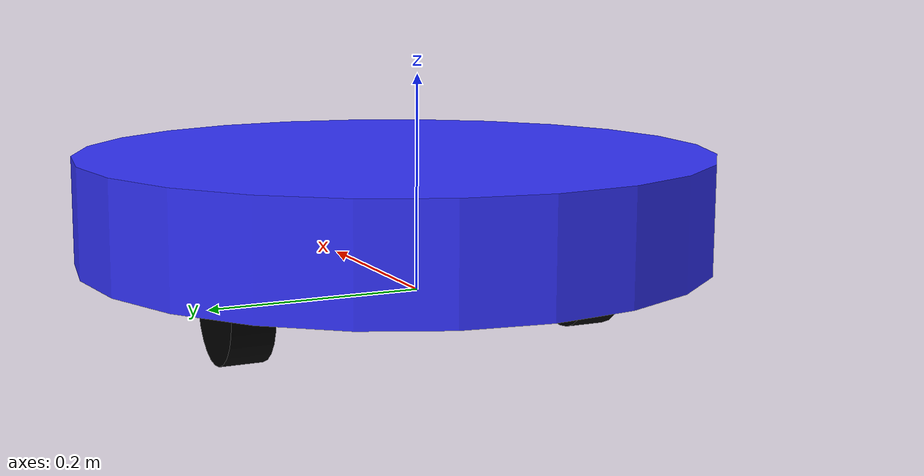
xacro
<?xml version="1.0"?>
<robot xmlns:xacro="http://www.ros.org/wiki/xacro">

    <xacro:include filename="inertial.xacro"/>

    <material name="white">
        <color rgba="1 1 1 1"/>
    </material>

    <material name="orange">
        <color rgba="1 0.3 0.1 1"/>
    </material>

    <material name="blue">
        <color rgba="0.2 0.2 1 1"/>
    </material>

    <material name="black">
        <color rgba="0 0 0 1"/>
    </material>

    <!-- BASE LINK -->
    <link name="base_link">
    </link>

    <!-- CHASSIS LINK -->
    <joint name="chassis_joint" type="fixed">
        <parent link="base_link"/>
        <child link="chassis"/>
        <origin xyz="-0.1 0 0"/>
    </joint>

    <link name="chassis">
        <visual>
            <origin xyz="0.15 0 0.075"/>
            <geometry>
                <cylinder radius="0.3" length="0.1"/> <!-- Circular chassis -->
            </geometry>
            <material name="blue"/>
        </visual>
        <collision>
            <origin xyz="0.15 0 0.075"/>
            <geometry>
                <cylinder radius="0.3" length="0.15"/>
            </geometry>
        </collision>
        <xacro:inertial_cylinder mass="0.5" radius="0.3" length="0.15">
            <origin xyz="0.15 0 0.075" rpy="0 0 0"/>
        </xacro:inertial_cylinder>
    </link>

    <!-- Adding colour to chassis link -->
    <gazebo reference="chassis">
        <material>Gazebo/Blue</material>
    </gazebo>

    <!-- LEFT WHEEL OF ROBOT -->
    <joint name="left_wheel_joint" type="continuous">
        <parent link="base_link"/>
        <child link="left_wheel"/>
        <origin xyz="0 0.175 0" rpy="-${pi/2} 0 0"/>
        <axis xyz="0 0 1"/>
    </joint>

    <link name="left_wheel">
        <visual>
            <geometry>
                <cylinder radius="0.05" length="0.04"/>
            </geometry>
            <material name="black"/>
        </visual>
        <collision>
            <geometry>
                <cylinder radius="0.05" length="0.04"/>
            </geometry>
        </collision>
        <xacro:inertial_cylinder mass="0.1" length="0.04" radius="0.05">
            <origin xyz="0 0 0" rpy="0 0 0"/>
        </xacro:inertial_cylinder>
    </link>
    <gazebo reference="left_wheel">
        <material>Gazebo/Black</material>
    </gazebo>

    <!-- RIGHT WHEEL OF ROBOT -->
    <joint name="right_wheel_joint" type="continuous">
        <parent link="base_link"/>
        <child link="right_wheel"/>
        <origin xyz="0 -0.175 0" rpy="${pi/2} 0 0"/>
        <axis xyz="0 0 -1"/>
    </joint>

    <link name="right_wheel">
        <visual>
            <geometry>
                <cylinder radius="0.05" length="0.04"/>
            </geometry>
            <material name="black"/>
        </visual>
        <collision>
            <geometry>
                <cylinder radius="0.05" length="0.04"/>
            </geometry>
        </collision>
        <xacro:inertial_cylinder mass="0.1" length="0.04" radius="0.05">
            <origin xyz="0 0 0" rpy="0 0 0"/>
        </xacro:inertial_cylinder>
    </link>
    <gazebo reference="right_wheel">
        <material>Gazebo/Black</material>
    </gazebo>

    <!-- DOLLY WHEEL JOINT -->
    <joint name="dolly_wheel_joint" type="fixed">
        <parent link="chassis"/>
        <child link="dolly_wheel"/>
        <origin xyz="0.24 0 0"/>
    </joint>

    <link name="dolly_wheel">
        <visual>
            <geometry>
                <sphere radius="0.05"/>
            </geometry>
            <material name="black"/>
        </visual>
        <collision>
            <geometry>
                <sphere radius="0.05"/>
            </geometry>
        </collision>
        <xacro:inertial_sphere mass="0.1" radius="0.05">
            <origin xyz="0 0 0" rpy="0 0 0"/>
        </xacro:inertial_sphere>
    </link>
    <gazebo reference="dolly_wheel">
        <material>Gazebo/Black</material>
        <mu1 value="0.100"/>
        <mu2 value="0.100"/>
    </gazebo>

</robot>
